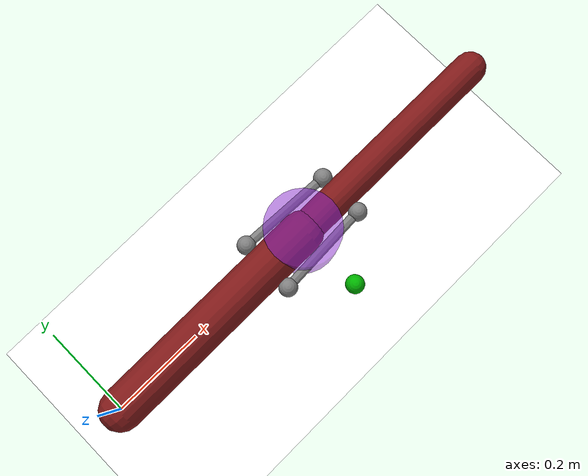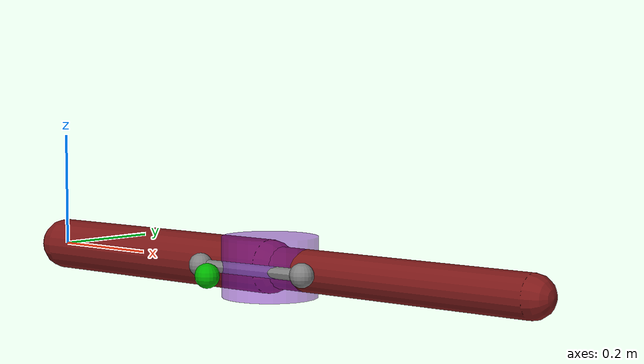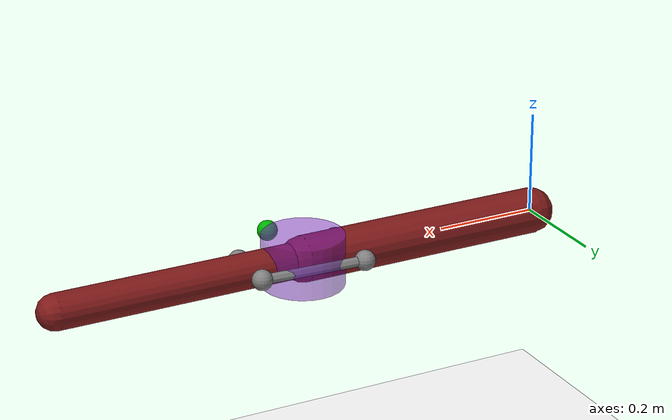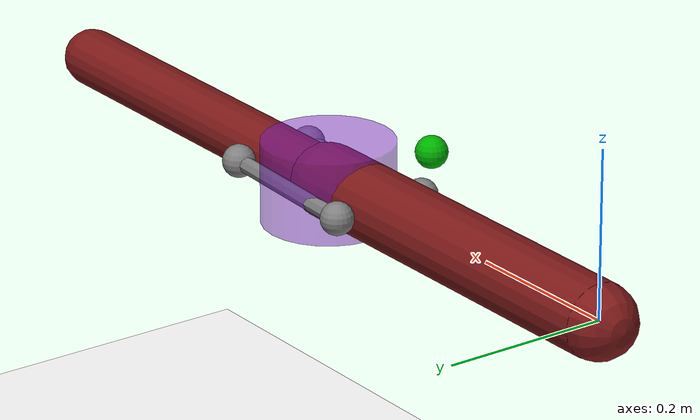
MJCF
<mujoco model="1-link 2-muscle arm">
  <option timestep="0.005" iterations="50" solver="Newton" tolerance="1e-10" gravity="9.81 0 0"/>

  <visual>
    <global offwidth="1920" offheight="1080"/>
    <rgba haze=".1 .1 .1 1"/>
  </visual>

  <default>
    <joint type="hinge" pos="0 0 0" axis="0 0 1" limited="true" range="0 120" damping="0.1"/>
    <muscle ctrllimited="true" ctrlrange="0 1"/>
  </default>

  <asset>
    <texture type="skybox" builtin="gradient" rgb1="0.6 0.6 0.6" rgb2="0 0 0" width="512" height="512"/>

    <texture name="texplane" type="2d" builtin="checker" rgb1=".25 .25 .25" rgb2=".3 .3 .3" width="512" height="512" mark="cross" markrgb=".8 .8 .8"/>

    <material name="matplane" reflectance="0.3" rgba="1 1 1 1"/>
  </asset>

  <worldbody>
    <geom name="floor" pos="0 0 -0.5" size="0 0 1" type="plane" material="matplane"/>

    <light directional="true" diffuse=".8 .8 .8" specular=".2 .2 .2" pos="0 0 5" dir="0 0 -1"/>
    <camera name="camera_view" pos="-3 0 2.25" xyaxes="0 -1 0 1 0 2" mode="trackcom"/>
    <camera name="camera" pos="0.598 0.016 1.825" xyaxes="0.024 1.000 0.000 -0.997 0.024 0.078"/>

    <body pos="0 0 0">
      <geom name="upper arm" type="capsule" size="0.045" fromto="0 0 0  0.5 0 0" rgba=".5 .1 .1 1"/>

      <site name="s1" pos="0.4 0.06 0" size="0.02"/>
      <site name="s2" pos="0.4 -0.06 0" size="0.02"/>
      <site name="x1" pos="0.5 -0.15 0" size="0.02" rgba="0 .7 0 1" group="1"/>

      <body pos="0.5 0 0">
        <geom name="forearm" type="capsule" size="0.035" fromto="0 0 0  0.5 0 0" rgba=".5 .1 .1 1"/>
        <joint name="elbow"/>
        <geom name="elbow" type="cylinder" pos="0 0 0" size=".08 .05" rgba=".5 .1 .8 .5" mass="0" group="1"/>

        <site name="s3" pos="0.11 0.05 0" size="0.02"/>
        <site name="s4" pos="0.11 -0.05 0" size="0.02"/>
      </body>
    </body>
  </worldbody>

  <tendon>

    <spatial name="EF" width="0.01">
      <site site="s1"/>
      <geom geom="elbow"/>
      <site site="s3"/>
    </spatial>

    <spatial name="EE" width="0.01">
      <site site="s2"/>
      <geom geom="elbow" sidesite="x1"/>
      <site site="s4"/>
    </spatial>

  </tendon>

  <actuator>
    <muscle name="EF" tendon="EF"/>
    <muscle name="EE" tendon="EE"/>
  </actuator>
</mujoco>
